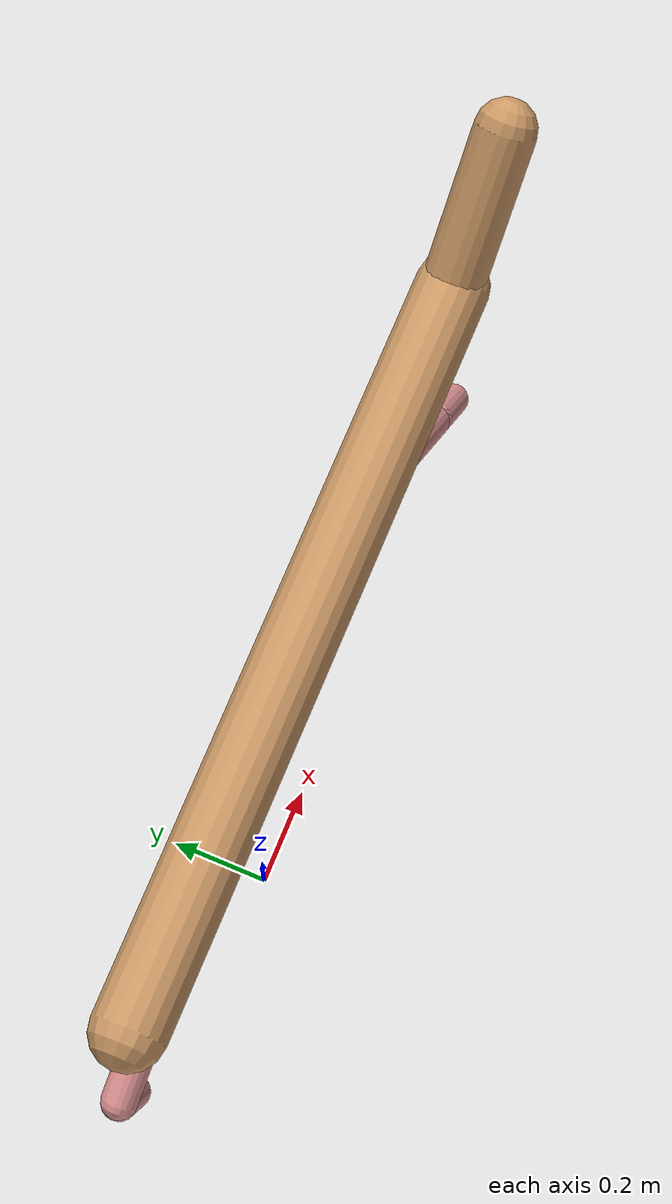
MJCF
<mujoco model="cheetah">
  <compiler angle="radian" coordinate="local" inertiafromgeom="true" settotalmass="14" />
  <default>
    <joint armature=".1" damping=".01" limited="true" solimplimit="0 .8 .03" solreflimit=".02 1" stiffness="8" />
    <geom conaffinity="0" condim="3" contype="1" friction="0.8 .1 .1" rgba="0.8 0.6 .4 1" solimp="0.0 0.8 0.01" solref="0.02 1" />
    <motor ctrllimited="true" ctrlrange="-1 1" />
  </default>
  <size nstack="300000" nuser_geom="1" />
  <option gravity="0 0 -9.81" timestep="0.01" />
  <worldbody>
    <body name="torso" pos="0.0 0.0 1.1528616027712526">
      <joint armature="0" axis="1 0 0" damping="0" limited="false" name="ignorex" pos="0 0 0" stiffness="0" type="slide" />
      <joint armature="0" axis="0 0 1" damping="0" limited="false" name="ignorez" pos="0 0 0" stiffness="0" type="slide" />
      <joint armature="0" axis="0 1 0" damping="0" limited="false" name="ignorey" pos="0 0 0" stiffness="0" type="hinge" />
      <geom fromto="-0.5 0.0 0.0 0.897934778933245 0.0 0.0" name="torso" size="0.06645450568434617" type="capsule" />
      <geom axisangle="0 1 0 .87" name="head" pos="0.997934778933245 0.0 0.1" size="0.0558604843020244 0.15" type="capsule" />

      <body name="bthigh" pos="-.5 0 0">
        <joint axis="0 1 0" damping="6" name="bthigh" pos="0 0 0" range="-.52 1.05" stiffness="240" type="hinge" />
        <geom axisangle="0 1 0 -3.8" name="bthigh" pos="0.0734775819030384 0.0 -0.0955208564739499" size="0.0322 0.10149999999999999" type="capsule" />
        <body name="bshin" pos="0.10695516380607678 0.0 -0.18104171294789978">
          <joint axis="0 1 0" damping="4.5" name="bshin" pos="0 0 0" range="-.785 .785" stiffness="180" type="hinge" />
          <geom axisangle="0 1 0 -2.03" name="bshin" pos="-0.0997507764050038 0.0 -0.0498753882025019" rgba="0.9 0.6 0.6 1" size="0.0322 0.105" type="capsule" />
          <body name="bfoot" pos="-0.1995015528100076 0.0 -0.0997507764050038">
            <joint axis="0 1 0" damping="3" name="bfoot" pos="0 0 0" range="-.4 .785" stiffness="120" type="hinge" />
            <geom axisangle="0 1 0 -.27" name="bfoot" pos="0.021667753813597694 0.0 -0.07005907066396588" rgba="0.9 0.6 0.6 1" size="0.0322 0.0658" type="capsule" />
            <inertial mass="10" />
          </body>
        </body>
      </body>
      <body name="fthigh" pos="0.897934778933245 0.0 0.0">
        <joint axis="0 1 0" damping="4.5" name="fthigh" pos="0 0 0" range="-1.5 0.8" stiffness="180" type="hinge" />
        <geom axisangle="0 1 0 .52" name="fthigh" pos="-0.1017452413679652 0.0 -0.17442041377365458" size="0.03268405740236734 0.1960027125194316" type="capsule" />
        <body name="fshin" pos="-0.2034904827359304 0.0 -0.34884082754730916">
          <joint axis="0 1 0" damping="3" name="fshin" pos="0 0 0" range="-1.2 1.1" stiffness="120" type="hinge" />
          <geom axisangle="0 1 0 -.6" name="fshin" pos="0.09439905460864725 0.0 -0.1307063833042808" rgba="0.9 0.6 0.6 1" size="0.03268405740236734 0.15621268817338158" type="capsule" />
          <body name="ffoot" pos="0.1887981092172945 0.0 -0.2614127666085616">
            <joint axis="0 1 0" damping="1.5" name="ffoot" pos="0 0 0" range="-3.1 -0.3" stiffness="60" type="hinge" />
            <geom axisangle="0 1 0 -.6" name="ffoot" pos="0.0629311552990656 0.0 -0.09789290824299093" rgba="0.9 0.6 0.6 1" size="0.03268405740236734 0.10315932237864822" type="capsule" />
            <inertial mass="10" />
          </body>
        </body>
      </body>
    </body>
  </worldbody>
  <actuator>
    <motor gear="120" joint="bthigh" name="bthigh" />
    <motor gear="90" joint="bshin" name="bshin" />
    <motor gear="60" joint="bfoot" name="bfoot" />
    <motor gear="120" joint="fthigh" name="fthigh" />
    <motor gear="60" joint="fshin" name="fshin" />
    <motor gear="30" joint="ffoot" name="ffoot" />
  </actuator>
</mujoco>
